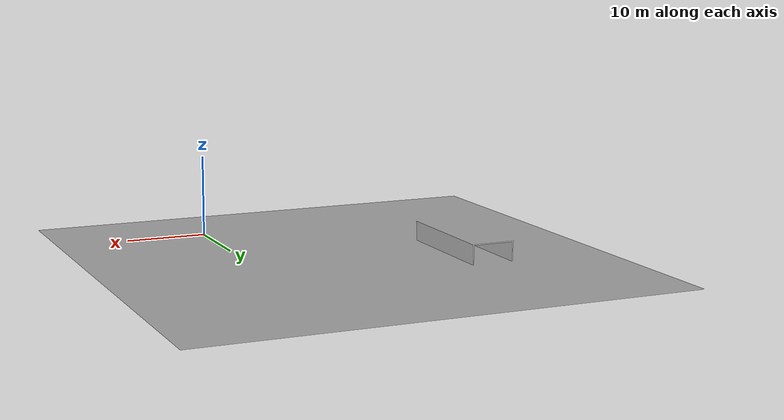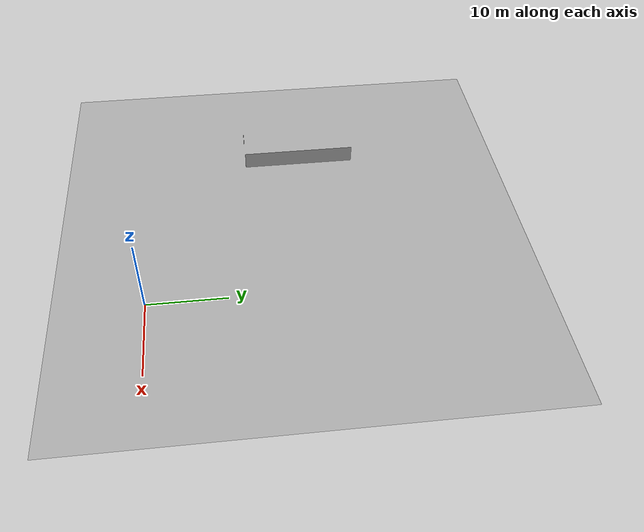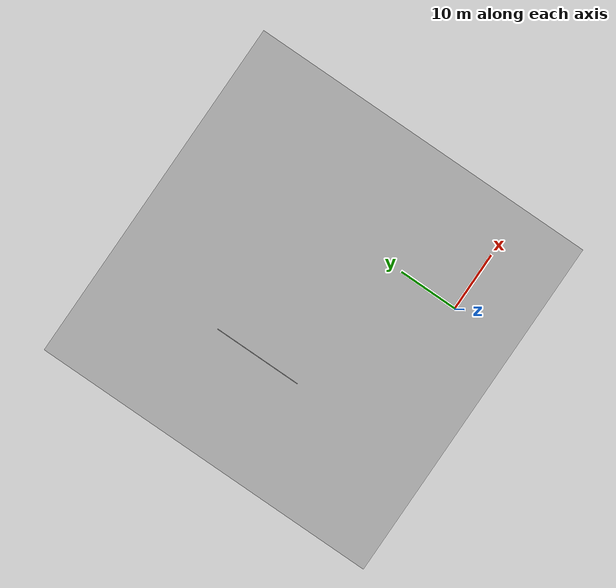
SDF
<?xml version="1.0" ?>
<sdf version="1.6">
  <model name="harita2">
    <static>true</static>
    <link name="link">
        <pose>0 0 0 1.570796 0 0</pose>
      <collision name="collision">
        <pose>0 0 0 0 0 0</pose>
        <geometry>
          <mesh>
            <scale>30 30 30</scale>
            <uri>model://harita2/meshes/harita2.obj</uri>
          </mesh>
        </geometry>
      </collision>
      <visual name="visual">
        <pose>0 0 0 0 0 0</pose>
        <geometry>
          <mesh>
            <scale>30 30 30</scale>
            <uri>model://harita2/meshes/harita2.obj</uri>
          </mesh>
        </geometry>
      </visual>
    </link>
  </model>
</sdf>
